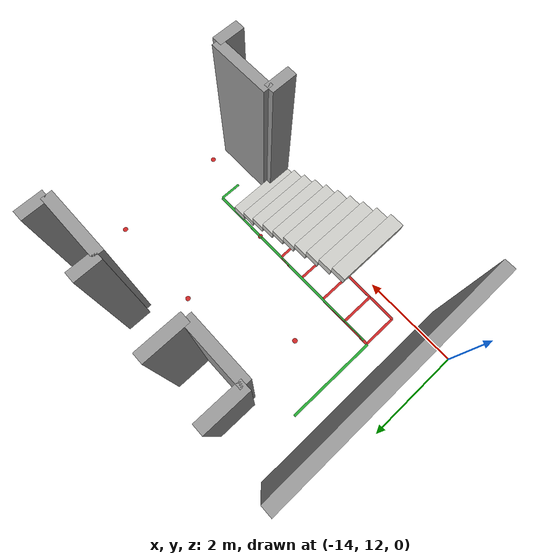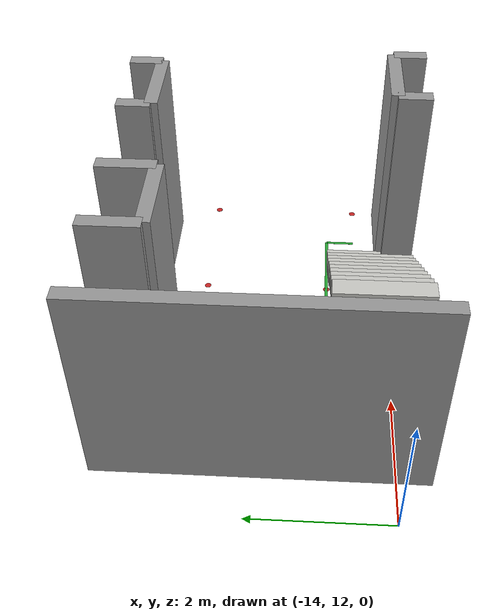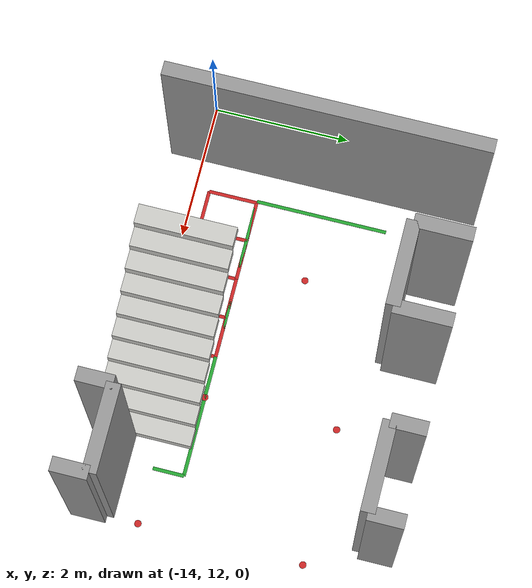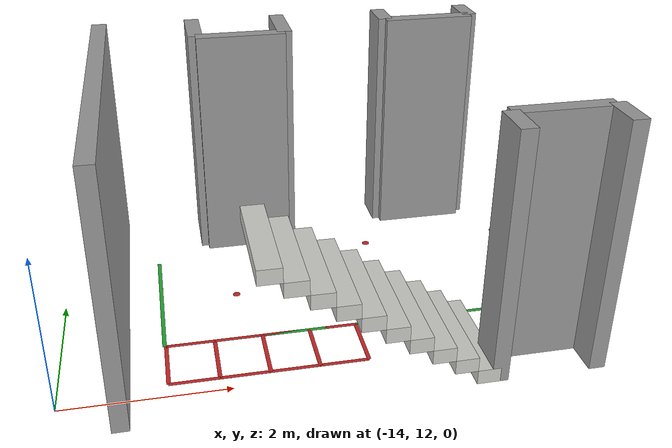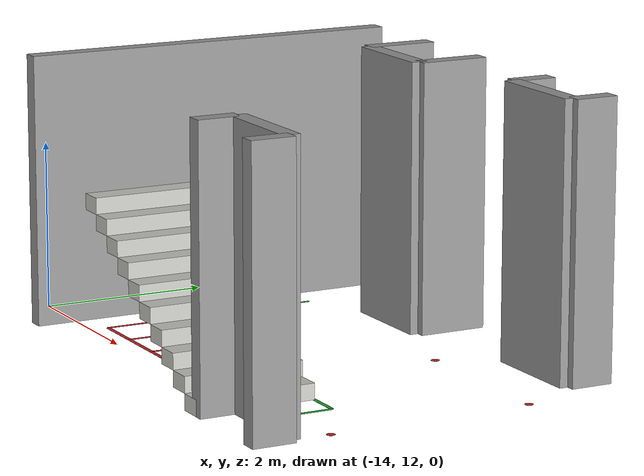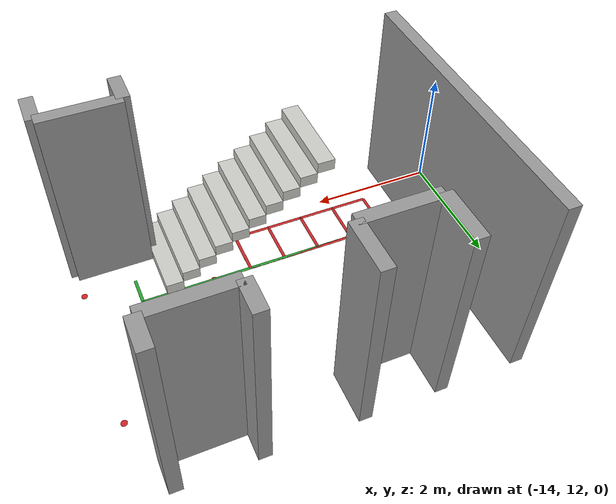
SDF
<sdf version="1.6">
 <world name="square_world">
  <model name="wall6">
   <static>true</static>
   <pose>-13.28 13.8125 1.6 0 0 -1.5708</pose>
   <link name="wall_link">
    <inertial><mass>10000</mass></inertial>
    <collision name="wall_collision">
     <geometry><box><size>4.575 0.2 3.2</size></box></geometry>
     <surface><contact><collide_bitmask>0x02</collide_bitmask></contact></surface>
    </collision>
    <visual name="wall_visual">
     <geometry><box><size>4.575 0.2 3.2</size></box></geometry>
     <material><script><name>Gazebo/Grey</name></script></material>
    </visual>
   </link>
  </model>
  <model name="wall33">
   <static>true</static>
   <pose>-8.09 15.85 1.6 0 0 -1.5708</pose>
   <link name="wall_link">
    <inertial><mass>10000</mass></inertial>
    <collision name="wall_collision">
     <geometry><box><size>0.50 0.2 3.2</size></box></geometry>
     <surface><contact><collide_bitmask>0x02</collide_bitmask></contact></surface>
    </collision>
    <visual name="wall_visual">
     <geometry><box><size>0.50 0.2 3.2</size></box></geometry>
     <material><script><name>Gazebo/Grey</name></script></material>
    </visual>
   </link>
  </model>
  <model name="wall34">
   <static>true</static>
   <pose>-9.33 15.85 1.6 0 0 -1.5708</pose>
   <link name="wall_link">
    <inertial><mass>10000</mass></inertial>
    <collision name="wall_collision">
     <geometry><box><size>0.50 0.2 3.2</size></box></geometry>
     <surface><contact><collide_bitmask>0x02</collide_bitmask></contact></surface>
    </collision>
    <visual name="wall_visual">
     <geometry><box><size>0.50 0.2 3.2</size></box></geometry>
     <material><script><name>Gazebo/Grey</name></script></material>
    </visual>
   </link>
  </model>
  <model name="wall35">
   <static>true</static>
   <pose>-8.71 15.6 1.6 0 0 0</pose>
   <link name="wall_link">
    <inertial><mass>10000</mass></inertial>
    <collision name="wall_collision">
     <geometry><box><size>1.24 0.2 3.2</size></box></geometry>
     <surface><contact><collide_bitmask>0x02</collide_bitmask></contact></surface>
    </collision>
    <visual name="wall_visual">
     <geometry><box><size>1.24 0.2 3.2</size></box></geometry>
     <material><script><name>Gazebo/Grey</name></script></material>
    </visual>
   </link>
  </model>
  <model name="wall36">
   <static>true</static>
   <pose>-10.82 15.69 1.6 0 0 -1.5708</pose>
   <link name="wall_link">
    <inertial><mass>10000</mass></inertial>
    <collision name="wall_collision">
     <geometry><box><size>0.82 0.2 3.2</size></box></geometry>
     <surface><contact><collide_bitmask>0x02</collide_bitmask></contact></surface>
    </collision>
    <visual name="wall_visual">
     <geometry><box><size>0.82 0.2 3.2</size></box></geometry>
     <material><script><name>Gazebo/Grey</name></script></material>
    </visual>
   </link>
  </model>
  <model name="wall37">
   <static>true</static>
   <pose>-12.02 15.69 1.6 0 0 -1.5708</pose>
   <link name="wall_link">
    <inertial><mass>10000</mass></inertial>
    <collision name="wall_collision">
     <geometry><box><size>0.82 0.2 3.2</size></box></geometry>
     <surface><contact><collide_bitmask>0x02</collide_bitmask></contact></surface>
    </collision>
    <visual name="wall_visual">
     <geometry><box><size>0.82 0.2 3.2</size></box></geometry>
     <material><script><name>Gazebo/Grey</name></script></material>
    </visual>
   </link>
  </model>
  <model name="wall38">
   <static>true</static>
   <pose>-11.42 15.28 1.6 0 0 0</pose>
   <link name="wall_link">
    <inertial><mass>10000</mass></inertial>
    <collision name="wall_collision">
     <geometry><box><size>1.20 0.2 3.2</size></box></geometry>
     <surface><contact><collide_bitmask>0x02</collide_bitmask></contact></surface>
    </collision>
    <visual name="wall_visual">
     <geometry><box><size>1.20 0.2 3.2</size></box></geometry>
     <material><script><name>Gazebo/Grey</name></script></material>
    </visual>
   </link>
  </model>
  <model name="wall42">
   <static>true</static>
   <pose>-7.72 11.7775 1.6 0 0 -1.5708</pose>
   <link name="wall_link">
    <inertial><mass>10000</mass></inertial>
    <collision name="wall_collision">
     <geometry><box><size>0.505 0.2 3.2</size></box></geometry>
     <surface><contact><collide_bitmask>0x02</collide_bitmask></contact></surface>
    </collision>
    <visual name="wall_visual">
     <geometry><box><size>0.505 0.2 3.2</size></box></geometry>
     <material><script><name>Gazebo/Grey</name></script></material>
    </visual>
   </link>
  </model>
  <model name="wall43">
   <static>true</static>
   <pose>-8.94 11.7775 1.6 0 0 -1.5708</pose>
   <link name="wall_link">
    <inertial><mass>10000</mass></inertial>
    <collision name="wall_collision">
     <geometry><box><size>0.505 0.2 3.2</size></box></geometry>
     <surface><contact><collide_bitmask>0x02</collide_bitmask></contact></surface>
    </collision>
    <visual name="wall_visual">
     <geometry><box><size>0.505 0.2 3.2</size></box></geometry>
     <material><script><name>Gazebo/Grey</name></script></material>
    </visual>
   </link>
  </model>
  <model name="wall44">
   <static>true</static>
   <pose>-8.33 12.03 1.6 0 0 0</pose>
   <link name="wall_link">
    <inertial><mass>10000</mass></inertial>
    <collision name="wall_collision">
     <geometry><box><size>1.22 0.2 3.2</size></box></geometry>
     <surface><contact><collide_bitmask>0x02</collide_bitmask></contact></surface>
    </collision>
    <visual name="wall_visual">
     <geometry><box><size>1.22 0.2 3.2</size></box></geometry>
     <material><script><name>Gazebo/Grey</name></script></material>
    </visual>
   </link>
  </model>
  <model name="Stairs">
   <pose>-10.345 12.23 0 0 -0 0</pose>
   <link name="Stairs_1">
    <visual name="Stairs_1_Visual_0">
     <pose>1.2645 0 0.0935 0 0 -1.5708</pose>
     <geometry><box><size>1.41 0.281 0.187</size></box></geometry>
     <material>
      <script><uri>file://media/materials/scripts/gazebo.material</uri><name>Gazebo/CeilingTiled</name></script>
      <ambient>0.760784 0.662745 0.627451 1</ambient>
     </material>
    </visual>
    <collision name="Stairs_1_Collision_0">
     <geometry><box><size>1.41 0.281 0.187</size></box></geometry>
     <pose>1.2645 0 0.0935 0 0 -1.5708</pose>
    </collision>
    <visual name="Stairs_1_Visual_1">
     <pose>0.9835 0 0.2805 0 0 -1.5708</pose>
     <geometry><box><size>1.41 0.281 0.187</size></box></geometry>
     <material>
      <script><uri>file://media/materials/scripts/gazebo.material</uri><name>Gazebo/CeilingTiled</name></script>
      <ambient>0.760784 0.662745 0.627451 1</ambient>
     </material>
    </visual>
    <collision name="Stairs_1_Collision_1">
     <geometry><box><size>1.41 0.281 0.187</size></box></geometry>
     <pose>0.9835 0 0.2805 0 0 -1.5708</pose>
    </collision>
    <visual name="Stairs_1_Visual_2">
     <pose>0.7025 0 0.4675 0 0 -1.5708</pose>
     <geometry><box><size>1.41 0.281 0.187</size></box></geometry>
     <material>
      <script><uri>file://media/materials/scripts/gazebo.material</uri><name>Gazebo/CeilingTiled</name></script>
      <ambient>0.760784 0.662745 0.627451 1</ambient>
     </material>
    </visual>
    <collision name="Stairs_1_Collision_2">
     <geometry><box><size>1.41 0.281 0.187</size></box></geometry>
     <pose>0.7025 0 0.4675 0 0 -1.5708</pose>
    </collision>
    <visual name="Stairs_1_Visual_3">
     <pose>0.4215 0 0.6545 0 0 -1.5708</pose>
     <geometry><box><size>1.41 0.281 0.187</size></box></geometry>
     <material>
      <script><uri>file://media/materials/scripts/gazebo.material</uri><name>Gazebo/CeilingTiled</name></script>
      <ambient>0.760784 0.662745 0.627451 1</ambient>
     </material>
    </visual>
    <collision name="Stairs_1_Collision_3">
     <geometry><box><size>1.41 0.281 0.187</size></box></geometry>
     <pose>0.4215 0 0.6545 0 0 -1.5708</pose>
    </collision>
    <visual name="Stairs_1_Visual_4">
     <pose>0.1405 0 0.8415 0 0 -1.5708</pose>
     <geometry><box><size>1.41 0.281 0.187</size></box></geometry>
     <material>
      <script><uri>file://media/materials/scripts/gazebo.material</uri><name>Gazebo/CeilingTiled</name></script>
      <ambient>0.760784 0.662745 0.627451 1</ambient>
     </material>
    </visual>
    <collision name="Stairs_1_Collision_4">
     <geometry><box><size>1.41 0.281 0.187</size></box></geometry>
     <pose>0.1405 0 0.8415 0 0 -1.5708</pose>
    </collision>
    <visual name="Stairs_1_Visual_5">
     <pose>-0.1405 0 1.0285 0 0 -1.5708</pose>
     <geometry><box><size>1.41 0.281 0.187</size></box></geometry>
     <material>
      <script><uri>file://media/materials/scripts/gazebo.material</uri><name>Gazebo/CeilingTiled</name></script>
      <ambient>0.760784 0.662745 0.627451 1</ambient>
     </material>
    </visual>
    <collision name="Stairs_1_Collision_5">
     <geometry><box><size>1.41 0.281 0.187</size></box></geometry>
     <pose>-0.1405 0 1.0285 0 0 -1.5708</pose>
    </collision>
    <visual name="Stairs_1_Visual_6">
     <pose>-0.4215 0 1.2155 0 0 -1.5708</pose>
     <geometry><box><size>1.41 0.281 0.187</size></box></geometry>
     <material>
      <script><uri>file://media/materials/scripts/gazebo.material</uri><name>Gazebo/CeilingTiled</name></script>
      <ambient>0.760784 0.662745 0.627451 1</ambient>
     </material>
    </visual>
    <collision name="Stairs_1_Collision_6">
     <geometry><box><size>1.41 0.281 0.187</size></box></geometry>
     <pose>-0.4215 0 1.2155 0 0 -1.5708</pose>
    </collision>
    <visual name="Stairs_1_Visual_7">
     <pose>-0.7025 0 1.4025 0 0 -1.5708</pose>
     <geometry><box><size>1.41 0.281 0.187</size></box></geometry>
     <material>
      <script><uri>file://media/materials/scripts/gazebo.material</uri><name>Gazebo/CeilingTiled</name></script>
      <ambient>0.760784 0.662745 0.627451 1</ambient>
     </material>
    </visual>
    <collision name="Stairs_1_Collision_7">
     <geometry><box><size>1.41 0.281 0.187</size></box></geometry>
     <pose>-0.7025 0 1.4025 0 0 -1.5708</pose>
    </collision>
    <visual name="Stairs_1_Visual_8">
     <pose>-0.9835 0 1.5895 0 0 -1.5708</pose>
     <geometry><box><size>1.41 0.281 0.187</size></box></geometry>
     <material>
      <script><uri>file://media/materials/scripts/gazebo.material</uri><name>Gazebo/CeilingTiled</name></script>
      <ambient>0.760784 0.662745 0.627451 1</ambient>
     </material>
    </visual>
    <collision name="Stairs_1_Collision_8">
     <geometry><box><size>1.41 0.281 0.187</size></box></geometry>
     <pose>-0.9835 0 1.5895 0 0 -1.5708</pose>
    </collision>
    <visual name="Stairs_1_Visual_9">
     <pose>-1.2645 0 1.7765 0 0 -1.5708</pose>
     <geometry><box><size>1.41 0.281 0.187</size></box></geometry>
     <material>
      <script><uri>file://media/materials/scripts/gazebo.material</uri><name>Gazebo/CeilingTiled</name></script>
      <ambient>0.760784 0.662745 0.627451 1</ambient>
     </material>
    </visual>
    <collision name="Stairs_1_Collision_9">
     <geometry><box><size>1.41 0.281 0.187</size></box></geometry>
     <pose>-1.2645 0 1.7765 0 0 -1.5708</pose>
    </collision>
   </link>
   <static>1</static>
  </model>
  <model name="wall548">
   <static>true</static>
   <pose>-10.595 12.935 0 0 0 0</pose>
   <link name="wall_link">
    <inertial><mass>10000</mass></inertial>
    <collision name="wall_collision">
     <geometry><box><size>4.11 0.05 0.001</size></box></geometry>
     <surface><contact><collide_bitmask>0x02</collide_bitmask></contact></surface>
    </collision>
    <visual name="wall_visual">
     <geometry><box><size>4.11 0.05 0.001</size></box></geometry>
     <material><script><name>Gazebo/Green</name></script></material>
    </visual>
   </link>
  </model>
  <model name="wall558">
   <static>true</static>
   <pose>-12.76 13.9075 0 0 0 -1.5708</pose>
   <link name="wall_link">
    <inertial><mass>10000</mass></inertial>
    <collision name="wall_collision">
     <geometry><box><size>1.945 0.05 0.001</size></box></geometry>
     <surface><contact><collide_bitmask>0x02</collide_bitmask></contact></surface>
    </collision>
    <visual name="wall_visual">
     <geometry><box><size>1.945 0.05 0.001</size></box></geometry>
     <material><script><name>Gazebo/Green</name></script></material>
    </visual>
   </link>
  </model>
  <model name="wall578">
   <static>true</static>
   <pose>-8.54 12.7075 0 0 0 -1.5708</pose>
   <link name="wall_link">
    <inertial><mass>10000</mass></inertial>
    <collision name="wall_collision">
     <geometry><box><size>0.455 0.05 0.001</size></box></geometry>
     <surface><contact><collide_bitmask>0x02</collide_bitmask></contact></surface>
    </collision>
    <visual name="wall_visual">
     <geometry><box><size>0.455 0.05 0.001</size></box></geometry>
     <material><script><name>Gazebo/Green</name></script></material>
    </visual>
   </link>
  </model>
  <model name="wall848">
   <static>true</static>
   <pose>-10.34 12.575 0 0 0 -1.5708</pose>
   <link name="wall_link">
    <inertial><mass>10000</mass></inertial>
    <collision name="wall_collision">
     <geometry><box><size>0.72 0.05 0.001</size></box></geometry>
     <surface><contact><collide_bitmask>0x02</collide_bitmask></contact></surface>
    </collision>
    <visual name="wall_visual">
     <geometry><box><size>0.72 0.05 0.001</size></box></geometry>
     <material><script><name>Gazebo/Red</name></script></material>
    </visual>
   </link>
  </model>
  <model name="wall858">
   <static>true</static>
   <pose>-10.94 12.575 0 0 0 -1.5708</pose>
   <link name="wall_link">
    <inertial><mass>10000</mass></inertial>
    <collision name="wall_collision">
     <geometry><box><size>0.72 0.05 0.001</size></box></geometry>
     <surface><contact><collide_bitmask>0x02</collide_bitmask></contact></surface>
    </collision>
    <visual name="wall_visual">
     <geometry><box><size>0.72 0.05 0.001</size></box></geometry>
     <material><script><name>Gazebo/Red</name></script></material>
    </visual>
   </link>
  </model>
  <model name="wall868">
   <static>true</static>
   <pose>-10.64 12.215 0 0 0 0</pose>
   <link name="wall_link">
    <inertial><mass>10000</mass></inertial>
    <collision name="wall_collision">
     <geometry><box><size>0.60 0.05 0.001</size></box></geometry>
     <surface><contact><collide_bitmask>0x02</collide_bitmask></contact></surface>
    </collision>
    <visual name="wall_visual">
     <geometry><box><size>0.60 0.05 0.001</size></box></geometry>
     <material><script><name>Gazebo/Red</name></script></material>
    </visual>
   </link>
  </model>
  <model name="wall878">
   <static>true</static>
   <pose>-10.64 12.935 0 0 0 0</pose>
   <link name="wall_link">
    <inertial><mass>10000</mass></inertial>
    <collision name="wall_collision">
     <geometry><box><size>0.60 0.05 0.001</size></box></geometry>
     <surface><contact><collide_bitmask>0x02</collide_bitmask></contact></surface>
    </collision>
    <visual name="wall_visual">
     <geometry><box><size>0.60 0.05 0.001</size></box></geometry>
     <material><script><name>Gazebo/Red</name></script></material>
    </visual>
   </link>
  </model>
  <model name="wall898">
   <static>true</static>
   <pose>-11.54 12.575 0 0 0 -1.5708</pose>
   <link name="wall_link">
    <inertial><mass>10000</mass></inertial>
    <collision name="wall_collision">
     <geometry><box><size>0.72 0.05 0.001</size></box></geometry>
     <surface><contact><collide_bitmask>0x02</collide_bitmask></contact></surface>
    </collision>
    <visual name="wall_visual">
     <geometry><box><size>0.72 0.05 0.001</size></box></geometry>
     <material><script><name>Gazebo/Red</name></script></material>
    </visual>
   </link>
  </model>
  <model name="wall908">
   <static>true</static>
   <pose>-11.24 12.215 0 0 0 0</pose>
   <link name="wall_link">
    <inertial><mass>10000</mass></inertial>
    <collision name="wall_collision">
     <geometry><box><size>0.60 0.05 0.001</size></box></geometry>
     <surface><contact><collide_bitmask>0x02</collide_bitmask></contact></surface>
    </collision>
    <visual name="wall_visual">
     <geometry><box><size>0.60 0.05 0.001</size></box></geometry>
     <material><script><name>Gazebo/Red</name></script></material>
    </visual>
   </link>
  </model>
  <model name="wall918">
   <static>true</static>
   <pose>-11.24 12.935 0 0 0 0</pose>
   <link name="wall_link">
    <inertial><mass>10000</mass></inertial>
    <collision name="wall_collision">
     <geometry><box><size>0.60 0.05 0.001</size></box></geometry>
     <surface><contact><collide_bitmask>0x02</collide_bitmask></contact></surface>
    </collision>
    <visual name="wall_visual">
     <geometry><box><size>0.60 0.05 0.001</size></box></geometry>
     <material><script><name>Gazebo/Red</name></script></material>
    </visual>
   </link>
  </model>
  <model name="wall928">
   <static>true</static>
   <pose>-12.14 12.575 0 0 0 -1.5708</pose>
   <link name="wall_link">
    <inertial><mass>10000</mass></inertial>
    <collision name="wall_collision">
     <geometry><box><size>0.72 0.05 0.001</size></box></geometry>
     <surface><contact><collide_bitmask>0x02</collide_bitmask></contact></surface>
    </collision>
    <visual name="wall_visual">
     <geometry><box><size>0.72 0.05 0.001</size></box></geometry>
     <material><script><name>Gazebo/Red</name></script></material>
    </visual>
   </link>
  </model>
  <model name="wall938">
   <static>true</static>
   <pose>-11.84 12.215 0 0 0 0</pose>
   <link name="wall_link">
    <inertial><mass>10000</mass></inertial>
    <collision name="wall_collision">
     <geometry><box><size>0.60 0.05 0.001</size></box></geometry>
     <surface><contact><collide_bitmask>0x02</collide_bitmask></contact></surface>
    </collision>
    <visual name="wall_visual">
     <geometry><box><size>0.60 0.05 0.001</size></box></geometry>
     <material><script><name>Gazebo/Red</name></script></material>
    </visual>
   </link>
  </model>
  <model name="wall948">
   <static>true</static>
   <pose>-11.84 12.935 0 0 0 0</pose>
   <link name="wall_link">
    <inertial><mass>10000</mass></inertial>
    <collision name="wall_collision">
     <geometry><box><size>0.60 0.05 0.001</size></box></geometry>
     <surface><contact><collide_bitmask>0x02</collide_bitmask></contact></surface>
    </collision>
    <visual name="wall_visual">
     <geometry><box><size>0.60 0.05 0.001</size></box></geometry>
     <material><script><name>Gazebo/Red</name></script></material>
    </visual>
   </link>
  </model>
  <model name="wall958">
   <static>true</static>
   <pose>-12.74 12.575 0 0 0 -1.5708</pose>
   <link name="wall_link">
    <inertial><mass>10000</mass></inertial>
    <collision name="wall_collision">
     <geometry><box><size>0.72 0.05 0.001</size></box></geometry>
     <surface><contact><collide_bitmask>0x02</collide_bitmask></contact></surface>
    </collision>
    <visual name="wall_visual">
     <geometry><box><size>0.72 0.05 0.001</size></box></geometry>
     <material><script><name>Gazebo/Red</name></script></material>
    </visual>
   </link>
  </model>
  <model name="wall968">
   <static>true</static>
   <pose>-12.44 12.215 0 0 0 0</pose>
   <link name="wall_link">
    <inertial><mass>10000</mass></inertial>
    <collision name="wall_collision">
     <geometry><box><size>0.60 0.05 0.001</size></box></geometry>
     <surface><contact><collide_bitmask>0x02</collide_bitmask></contact></surface>
    </collision>
    <visual name="wall_visual">
     <geometry><box><size>0.60 0.05 0.001</size></box></geometry>
     <material><script><name>Gazebo/Red</name></script></material>
    </visual>
   </link>
  </model>
  <model name="wall978">
   <static>true</static>
   <pose>-12.44 12.935 0 0 0 0</pose>
   <link name="wall_link">
    <inertial><mass>10000</mass></inertial>
    <collision name="wall_collision">
     <geometry><box><size>0.60 0.05 0.001</size></box></geometry>
     <surface><contact><collide_bitmask>0x02</collide_bitmask></contact></surface>
    </collision>
    <visual name="wall_visual">
     <geometry><box><size>0.60 0.05 0.001</size></box></geometry>
     <material><script><name>Gazebo/Red</name></script></material>
    </visual>
   </link>
  </model>
  <model name="wall1198">
   <static>true</static>
   <pose>-7.72 14.88 0 0 0 0</pose>
   <link name="wall_link">
    <inertial><mass>10000</mass></inertial>
    <collision name="wall_collision">
     <geometry><cylinder><radius>0.05</radius><length>0.001</length></cylinder></geometry>
     <surface><contact><collide_bitmask>0x02</collide_bitmask></contact></surface>
    </collision>
    <visual name="wall_visual">
     <geometry><cylinder><radius>0.05</radius><length>0.001</length></cylinder></geometry>
     <material><script><name>Gazebo/Red</name></script></material>
    </visual>
   </link>
  </model>
  <model name="wall1208">
   <static>true</static>
   <pose>-9.72 14.88 0 0 0 0</pose>
   <link name="wall_link">
    <inertial><mass>10000</mass></inertial>
    <collision name="wall_collision">
     <geometry><cylinder><radius>0.05</radius><length>0.001</length></cylinder></geometry>
     <surface><contact><collide_bitmask>0x02</collide_bitmask></contact></surface>
    </collision>
    <visual name="wall_visual">
     <geometry><cylinder><radius>0.05</radius><length>0.001</length></cylinder></geometry>
     <material><script><name>Gazebo/Red</name></script></material>
    </visual>
   </link>
  </model>
  <model name="wall1258">
   <static>true</static>
   <pose>-7.72 12.48 0 0 0 0</pose>
   <link name="wall_link">
    <inertial><mass>10000</mass></inertial>
    <collision name="wall_collision">
     <geometry><cylinder><radius>0.05</radius><length>0.001</length></cylinder></geometry>
     <surface><contact><collide_bitmask>0x02</collide_bitmask></contact></surface>
    </collision>
    <visual name="wall_visual">
     <geometry><cylinder><radius>0.05</radius><length>0.001</length></cylinder></geometry>
     <material><script><name>Gazebo/Red</name></script></material>
    </visual>
   </link>
  </model>
  <model name="wall1268">
   <static>true</static>
   <pose>-9.72 12.935 0 0 0 0</pose>
   <link name="wall_link">
    <inertial><mass>10000</mass></inertial>
    <collision name="wall_collision">
     <geometry><cylinder><radius>0.05</radius><length>0.001</length></cylinder></geometry>
     <surface><contact><collide_bitmask>0x02</collide_bitmask></contact></surface>
    </collision>
    <visual name="wall_visual">
     <geometry><cylinder><radius>0.05</radius><length>0.001</length></cylinder></geometry>
     <material><script><name>Gazebo/Red</name></script></material>
    </visual>
   </link>
  </model>
  <model name="wall1308">
   <static>true</static>
   <pose>-11.76 13.9075 0 0 0 -1.5708</pose>
   <link name="wall_link">
    <inertial><mass>10000</mass></inertial>
    <collision name="wall_collision">
     <geometry><cylinder><radius>0.05</radius><length>0.001</length></cylinder></geometry>
     <surface><contact><collide_bitmask>0x02</collide_bitmask></contact></surface>
    </collision>
    <visual name="wall_visual">
     <geometry><cylinder><radius>0.05</radius><length>0.001</length></cylinder></geometry>
     <material><script><name>Gazebo/Red</name></script></material>
    </visual>
   </link>
  </model>
 </world>
</sdf>
